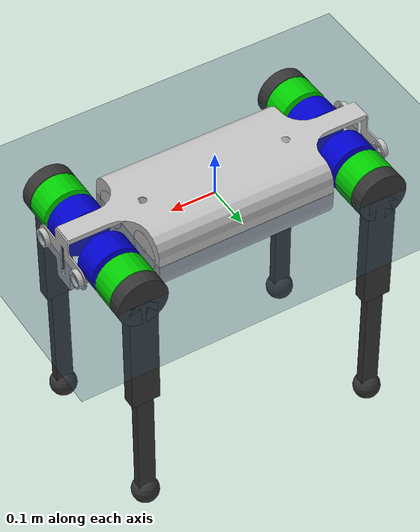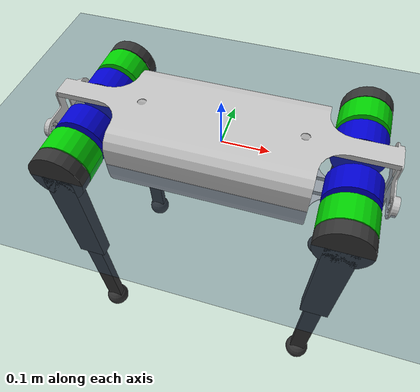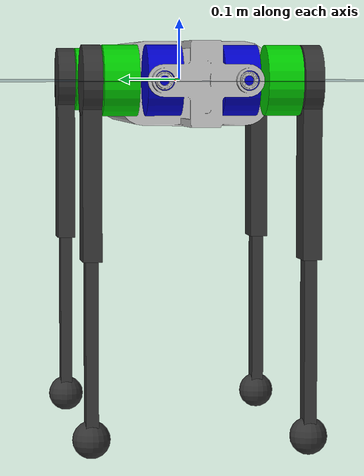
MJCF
<mujoco model="go2 scene">
  <include file="mjmodel.xml"/>

  <statistic center="0 0 0.1" extent="0.8"/>

  <visual>
    <headlight diffuse="0.6 0.6 0.6" ambient="0.3 0.3 0.3" specular="0 0 0"/>
    <rgba haze="0.15 0.25 0.35 1"/>
    <global azimuth="-130" elevation="-20"/>
  </visual>

  <asset>
    <texture type="skybox" builtin="gradient" rgb1="0.3 0.5 0.7" rgb2="0 0 0" width="512" height="3072"/>
    <texture type="2d" name="groundplane" builtin="checker" mark="edge" rgb1="0.2 0.3 0.4" rgb2="0.1 0.2 0.3"
      markrgb="0.8 0.8 0.8" width="300" height="300"/>
    <material name="groundplane" texture="groundplane" texuniform="true" texrepeat="5 5" reflectance="0.2"/>
  </asset>

  <worldbody>
    <light pos="0 0 1.5" dir="0 0 -1" directional="true"/>

    <geom name="floor" size="100 100 0.01" type="plane" material="groundplane"  contype="1" conaffinity="1"  friction="0.6 0.01 0.001" />

  </worldbody>
</mujoco>

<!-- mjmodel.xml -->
<mujoco model="aliengo">
  <compiler angle="radian" meshdir="../meshes/"  autolimits="true"/>
    <size njmax="500" nconmax="100" />
  <option gravity='0 0 -9.806' iterations='50' solver='Newton' timestep='0.002'/>

  <default>

    <default class="go2">
      <geom friction="0.5" margin="0.001" condim="1"/>
      <joint axis="0 1 0" damping="0.1" armature="0.01" frictionloss="0.2"/>
      <motor ctrlrange="-100 100"/>

      <default class="hip">
      <joint axis="1 0 0" range="-0.2 0.2"/>
      <motor ctrlrange="-65 65"/>
      </default>

      <default class="thigh">
      <joint  axis="0 1 0" range="-0.523 2.1"/>
      <motor ctrlrange="-100 100"/>
      </default>

      <default class="calf">
      <joint  axis="0 1 0" range="-2.5 -0.53"/>
      <motor ctrlrange="-100 100"/>
      </default>

      <default class="visual">
      <geom type="mesh" contype="0" conaffinity="0" group="2"/>
      </default>

      <default class="collision">
      <geom group="3"/>
          <default class="foot">
          <geom size="0.022" pos="-0.002 0 -0.213" priority="1" condim="6" friction="0.4 0.02 0.01"/>
          </default>
      </default>

    </default>
  </default>

  <asset>
      <material name="black" rgba="0 0 0 1"/>
      <material name="white" rgba="1 1 1 1"/>
      <material name="gray" rgba="0.671705 0.692426 0.774270 1"/>
      <mesh name="trunk" file="trunk.STL"/>
      <mesh name="FR_hip" file="FR_hip.STL"/>
      <mesh name="FR_thigh" file="FR_thigh.STL"/>
      <mesh name="FR_calf" file="FR_calf.STL"/>
      <mesh name="FR_foot" file="FR_foot.STL"/>
      <mesh name="FL_hip" file="FL_hip.STL"/>
      <mesh name="FL_thigh" file="FL_thigh.STL"/>
      <mesh name="FL_calf" file="FL_calf.STL"/>
      <mesh name="FL_foot" file="FL_foot.STL"/>
      <mesh name="RR_hip" file="RR_hip.STL"/>
      <mesh name="RR_thigh" file="RR_thigh.STL"/>
      <mesh name="RR_calf" file="RR_calf.STL"/>
      <mesh name="RR_foot" file="RR_foot.STL"/>
      <mesh name="RL_hip" file="RL_hip.STL"/>
      <mesh name="RL_thigh" file="RL_thigh.STL"/>
      <mesh name="RL_calf" file="RL_calf.STL"/>
      <mesh name="RL_foot" file="RL_foot.STL"/>
  </asset>

  <worldbody>
    <body name="base_link" pos="0  0  0" childclass="go2">

      <inertial
      pos="0.0021844797125159  0  0.0"
      quat="1 0 0 0"
      mass="10.363440861834"
      diaginertia="0.0307241456737702 0.0433313554148282 0.0620346119049387"/>

      <freejoint/>
      <geom type="mesh" mesh="trunk" rgba="0.752941 0.752941 0.752941 1"  class="visual" />

      <!-- 碰撞检测（与视觉相同） -->

      <!-- 辅助几何体 -->
      <geom size="0.0005 0.0005 0.0005" pos="0 0 0.1" type="box"  class="collision"/>

      <site name="imu" pos="-0.02557 0 0.04232"/>

    <body name="FR_hip" pos="0.2717 -0.065 0">
      <inertial pos="0 -0.0144744 0" quat="0.707107 0.707107 0 0" mass="1.86072" diaginertia="0.00531844 0.00531844 0.00323777"/>
      <joint name="FR_hip_joint" pos="0 0 0" axis="1 0 0" range="-0.873 1.047" actuatorfrcrange="-54 54"/>
      <geom size="0.055 0.015" pos="0 -0.10665 0" quat="0.707107 0.707107 0 0" type="cylinder" rgba="0.2 0.2 0.2 1"/>
      <geom size="0.055 0.0275" pos="0 0.00545 0" quat="0.707107 0.707107 0 0" type="cylinder" rgba="0 0 0.8 1"/>
      <body name="FR_thigh" pos="0 -0.10665 0">
        <inertial pos="0.00306424 0.0345571 -0.030486" quat="0.736578 -0.067477 0.0177918 0.672743" mass="1.9883" diaginertia="0.0184667 0.017479 0.00248764"/>
        <joint name="FR_thigh_joint" pos="0 0 0" axis="0 1 0" range="-0.524 3.927" actuatorfrcrange="-54 54"/>
        <geom size="0.0315 0.015 0.14" pos="0 0 -0.14" type="box" rgba="0.2 0.2 0.2 1"/>
        <geom size="0.055 0.0275" pos="0 0.0446 0" quat="0.707107 0.707107 0 0" type="cylinder" rgba="0 0.8 0 1"/>
        <body name="FR_calf" pos="0 0 -0.28">
          <inertial pos="0.010175 -0.000332634 -0.182164" quat="0.724338 0.00406092 0.0011974 0.689432" mass="0.25385" diaginertia="0.00350706 0.00348301 6.39204e-05"/>
          <joint name="FR_calf_joint" pos="0 0 0" axis="0 1 0" range="-2.775 -0.611" actuatorfrcrange="-54 54"/>
          <geom size="0.0195 0.01 0.14" pos="0 0 -0.14" type="box" rgba="0.2 0.2 0.2 1"/>
          <geom size="0.03" pos="0 0 -0.28" rgba="0.2 0.2 0.2 1"/>
        </body>
      </body>
    </body>
    <body name="FL_hip" pos="0.2717 0.065 0">
      <inertial pos="0 0.0144744 0" quat="0.707107 0.707107 0 0" mass="1.86072" diaginertia="0.00531844 0.00531844 0.00323777"/>
      <joint name="FL_hip_joint" pos="0 0 0" axis="1 0 0" range="-0.873 1.047" actuatorfrcrange="-54 54"/>
      <geom size="0.055 0.015" pos="0 0.10665 0" quat="0.707107 0.707107 0 0" type="cylinder" rgba="0.2 0.2 0.2 1"/>
      <geom size="0.055 0.0275" pos="0 -0.00545 0" quat="0.707107 0.707107 0 0" type="cylinder" rgba="0 0 0.8 1"/>
      <body name="FL_thigh" pos="0 0.10665 0">
        <inertial pos="0.00306424 -0.0345571 -0.030486" quat="0.672743 0.0177918 -0.067477 0.736578" mass="1.9883" diaginertia="0.0184667 0.017479 0.00248764"/>
        <joint name="FL_thigh_joint" pos="0 0 0" axis="0 1 0" range="-0.524 3.927" actuatorfrcrange="-54 54"/>
        <geom size="0.0315 0.015 0.14" pos="0 0 -0.14" type="box" rgba="0.2 0.2 0.2 1"/>
        <geom size="0.055 0.0275" pos="0 -0.0446 0" quat="0.707107 0.707107 0 0" type="cylinder" rgba="0 0.8 0 1"/>
        <body name="FL_calf" pos="0 0 -0.28">
          <inertial pos="0.010175 -0.000332634 -0.182164" quat="0.724338 0.00406092 0.0011974 0.689432" mass="0.25385" diaginertia="0.00350706 0.00348301 6.39204e-05"/>
          <joint name="FL_calf_joint" pos="0 0 0" axis="0 1 0" range="-2.775 -0.611" actuatorfrcrange="-54 54"/>
          <geom size="0.0195 0.01 0.14" pos="0 0 -0.14" type="box" rgba="0.2 0.2 0.2 1"/>
          <geom size="0.03" pos="0 0 -0.28" rgba="0.2 0.2 0.2 1"/>
        </body>
      </body>
    </body>
    <body name="RR_hip" pos="-0.2717 -0.065 0">
      <inertial pos="0 -0.0144744 0" quat="0.707107 0.707107 0 0" mass="1.86072" diaginertia="0.00531844 0.00531844 0.00323777"/>
      <joint name="RR_hip_joint" pos="0 0 0" axis="1 0 0" range="-0.873 1.047" actuatorfrcrange="-54 54"/>
      <geom size="0.055 0.015" pos="0 -0.10665 0" quat="0.707107 0.707107 0 0" type="cylinder" rgba="0.2 0.2 0.2 1"/>
      <geom size="0.055 0.0275" pos="0 0.00545 0" quat="0.707107 0.707107 0 0" type="cylinder" rgba="0 0 0.8 1"/>
      <body name="RR_thigh" pos="0 -0.10665 0">
        <inertial pos="0.00306424 0.0345571 -0.030486" quat="0.736578 -0.067477 0.0177918 0.672743" mass="1.9883" diaginertia="0.0184667 0.017479 0.00248764"/>
        <joint name="RR_thigh_joint" pos="0 0 0" axis="0 1 0" range="-0.524 3.927" actuatorfrcrange="-54 54"/>
        <geom size="0.0315 0.015 0.14" pos="0 0 -0.14" type="box" rgba="0.2 0.2 0.2 1"/>
        <geom size="0.055 0.0275" pos="0 0.0446 0" quat="0.707107 0.707107 0 0" type="cylinder" rgba="0 0.8 0 1"/>
        <body name="RR_calf" pos="0 0 -0.28">
          <inertial pos="0.010175 -0.000332634 -0.182164" quat="0.724338 0.00406092 0.0011974 0.689432" mass="0.25385" diaginertia="0.00350706 0.00348301 6.39204e-05"/>
          <joint name="RR_calf_joint" pos="0 0 0" axis="0 1 0" range="-2.775 -0.611" actuatorfrcrange="-54 54"/>
          <geom size="0.0195 0.01 0.14" pos="0 0 -0.14" type="box" rgba="0.2 0.2 0.2 1"/>
          <geom size="0.03" pos="0 0 -0.28" rgba="0.2 0.2 0.2 1"/>
        </body>
      </body>
    </body>
    <body name="RL_hip" pos="-0.2717 0.065 0">
      <inertial pos="0 0.0144744 0" quat="0.707107 0.707107 0 0" mass="1.86072" diaginertia="0.00531844 0.00531844 0.00323777"/>
      <joint name="RL_hip_joint" pos="0 0 0" axis="1 0 0" range="-0.873 1.047" actuatorfrcrange="-54 54"/>
      <geom size="0.055 0.015" pos="0 0.10665 0" quat="0.707107 0.707107 0 0" type="cylinder" rgba="0.2 0.2 0.2 1"/>
      <geom size="0.055 0.0275" pos="0 -0.00545 0" quat="0.707107 0.707107 0 0" type="cylinder" rgba="0 0 0.8 1"/>
      <body name="RL_thigh" pos="0 0.10665 0">
        <inertial pos="0.00306424 -0.0345571 -0.030486" quat="0.672743 0.0177918 -0.067477 0.736578" mass="1.9883" diaginertia="0.0184667 0.017479 0.00248764"/>
        <joint name="RL_thigh_joint" pos="0 0 0" axis="0 1 0" range="-0.524 3.927" actuatorfrcrange="-54 54"/>
        <geom size="0.0315 0.015 0.14" pos="0 0 -0.14" type="box" rgba="0.2 0.2 0.2 1"/>
        <geom size="0.055 0.0275" pos="0 -0.0446 0" quat="0.707107 0.707107 0 0" type="cylinder" rgba="0 0.8 0 1"/>
        <body name="RL_calf" pos="0 0 -0.28">
          <inertial pos="0.010175 -0.000332634 -0.182164" quat="0.724338 0.00406092 0.0011974 0.689432" mass="0.25385" diaginertia="0.00350706 0.00348301 6.39204e-05"/>
          <joint name="RL_calf_joint" pos="0 0 0" axis="0 1 0" range="-2.775 -0.611" actuatorfrcrange="-54 54"/>
          <geom size="0.0195 0.01 0.14" pos="0 0 -0.14" type="box" rgba="0.2 0.2 0.2 1"/>
          <geom size="0.03" pos="0 0 -0.28" rgba="0.2 0.2 0.2 1"/>
        </body>
      </body>
    </body>
  </body>
  </worldbody>

<actuator>
  <motor class="hip" name="FL_hip" joint="FL_hip_joint"/>
  <motor class="thigh" name="FL_thigh" joint="FL_thigh_joint"/>
  <motor class="calf" name="FL_calf" joint="FL_calf_joint"/>
  <motor class="hip" name="FR_hip" joint="FR_hip_joint"/>
  <motor class="thigh" name="FR_thigh" joint="FR_thigh_joint"/>
  <motor class="calf" name="FR_calf" joint="FR_calf_joint"/>
  <motor class="hip" name="RL_hip" joint="RL_hip_joint"/>
  <motor class="thigh" name="RL_thigh" joint="RL_thigh_joint"/>
  <motor class="calf" name="RL_calf" joint="RL_calf_joint"/>
  <!--   其他电机同理   -->
  <motor class="hip" name="RR_hip" joint="RR_hip_joint"/>
  <motor class="thigh" name="RR_thigh" joint="RR_thigh_joint"/>
  <motor class="calf" name="RR_calf" joint="RR_calf_joint"/>
  </actuator>

  <sensor>
  <jointpos name="FL_hip_pos" joint="FL_hip_joint"/>
  <jointpos name="FL_thigh_pos" joint="FL_thigh_joint"/>
  <jointpos name="FL_calf_pos" joint="FL_calf_joint"/>
  <!--   其他传感器同理   -->
  <jointpos name="FR_hip_pos" joint="FR_hip_joint"/>
  <jointpos name="FR_thigh_pos" joint="FR_thigh_joint"/>
  <jointpos name="FR_calf_pos" joint="FR_calf_joint"/>
  <jointpos name="RL_hip_pos" joint="RL_hip_joint"/>
  <jointpos name="RL_thigh_pos" joint="RL_thigh_joint"/>
  <jointpos name="RL_calf_pos" joint="RL_calf_joint"/>
  <jointpos name="RR_hip_pos" joint="RR_hip_joint"/>
  <jointpos name="RR_thigh_pos" joint="RR_thigh_joint"/>
  <jointpos name="RR_calf_pos" joint="RR_calf_joint"/>
  <jointvel name="FL_hip_vel" joint="FL_hip_joint"/>
  <jointvel name="FL_thigh_vel" joint="FL_thigh_joint"/>
  <jointvel name="FL_calf_vel" joint="FL_calf_joint"/>
  <jointvel name="FR_hip_vel" joint="FR_hip_joint"/>
  <jointvel name="FR_thigh_vel" joint="FR_thigh_joint"/>
  <jointvel name="FR_calf_vel" joint="FR_calf_joint"/>
  <jointvel name="RL_hip_vel" joint="RL_hip_joint"/>
  <jointvel name="RL_thigh_vel" joint="RL_thigh_joint"/>
  <jointvel name="RL_calf_vel" joint="RL_calf_joint"/>
  <jointvel name="RR_hip_vel" joint="RR_hip_joint"/>
  <jointvel name="RR_thigh_vel" joint="RR_thigh_joint"/>
  <jointvel name="RR_calf_vel" joint="RR_calf_joint"/>

  <framequat name="imu_quat" objtype="site" objname="imu"/>
  <gyro name="imu_gyro" site="imu"/>
  <accelerometer name="imu_acc" site="imu"/>
  <framepos name="frame_pos" objtype="site" objname="imu"/>
  <framelinvel name="frame_vel" objtype="site" objname="imu"/>
  </sensor>

</mujoco>
